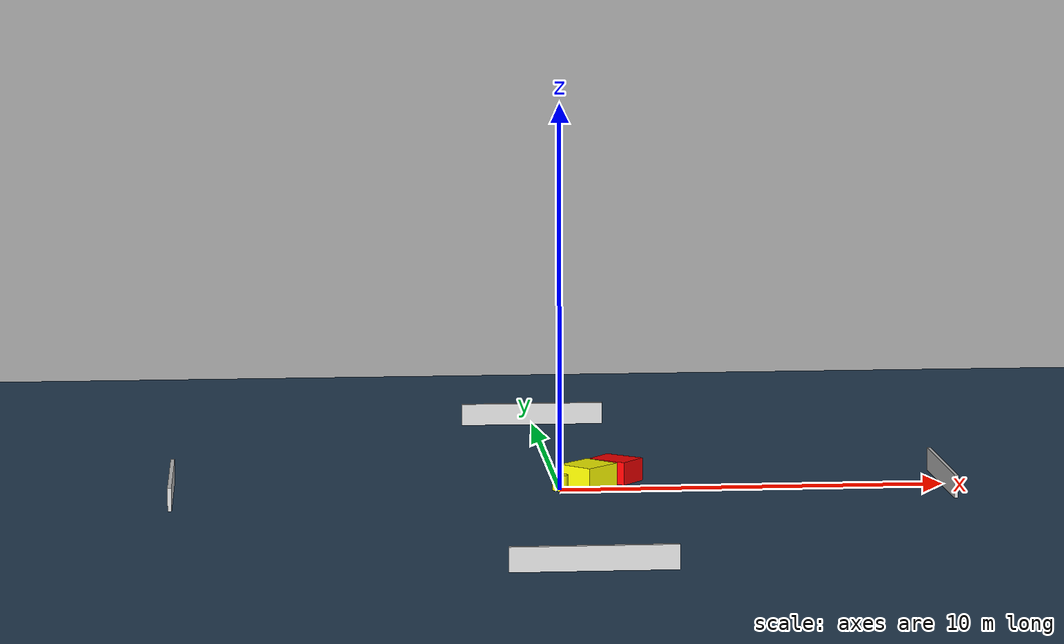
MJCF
<?xml version="1.0" ?>
<mujoco model="generated_environment">
  <option timestep="0.01" integrator="RK4" cone="elliptic"/>
  <default>
    <geom density="1"/>
  </default>
  <asset>
    <texture builtin="gradient" height="3072" name="skybox" rgb1="0.3 0.5 0.7" rgb2="0 0 0" type="skybox" width="512"/>
    <texture builtin="checker" height="300" name="groundplane" rgb1="0.2 0.3 0.4" rgb2="0.1 0.2 0.3" type="2d" width="300"/>
    <material name="groundplane" reflectance="0.2" texrepeat="5 5" texture="groundplane"/>
  </asset>
  <worldbody>
    <light dir="0 0 -1" directional="true" pos="0 0 1.5"/>
    <geom condim="3" friction="0.5 0.005 0.001" material="groundplane" name="floor" pos="0 0 0" size="0 0 0.05" type="plane"/>
    <body name="walls">
      <geom name="wall_1" condim="4" pos="-10.0 0.0 0.3" rgba="0.800000011920929 0.800000011920929 0.800000011920929 1.0" size="0.05 2.0 0.3" type="box"/>
      <geom name="wall_2" condim="4" pos="10.0 0.0 0.3" rgba="0.800000011920929 0.800000011920929 0.800000011920929 1.0" size="0.05 2.0 0.3" type="box"/>
      <geom name="wall_3" condim="4" pos="0.0 -10.0 0.3" rgba="0.800000011920929 0.800000011920929 0.800000011920929 1.0" size="2.0 0.05 0.3" type="box"/>
      <geom name="wall_4" condim="4" pos="0.0 10.0 0.3" rgba="0.800000011920929 0.800000011920929 0.800000011920929 1.0" size="2.0 0.05 0.3" type="box"/>
    </body>
    <body name="robot">
      <joint name="joint_x" type="slide" pos="0 0 0" axis="1 0 0"/>
      <joint name="joint_y" type="slide" pos="0 0 0" axis="0 1 0"/>
      <geom name="robot" type="cylinder" pos="0.0 0.0 0.2" size="0.2 0.2 0.0" mass="5.0" friction="1.0 0.005 0.0001" condim="4" rgba="1.0 1.0 0.0 1.0"/>
    </body>
    <body name="obstacle_1_movable">
      <geom name="obstacle_1_movable" condim="4" pos="0.7691448424293007 0.4348308018163337 0.3" euler="0 0 314.5675623578032" friction="0.0 0.005 0.001" rgba="1.0 1.0 0.0 1.0" size="0.5068185234734999 0.5514385079834957 0.3" type="box" mass="0.1"/>
      <joint type="free"/>
    </body>
    <body name="obstacle_2_static">
      <geom name="obstacle_2_static" condim="4" pos="1.551813282816288 1.1594086588485852 0.3" euler="0 0 231.3657366138915" friction="0.0 0.005 0.001" rgba="1.0 0.0 0.0 1.0" size="0.43558684194365394 0.549443255360094 0.3" type="box"/>
    </body>
  </worldbody>
  <actuator>
    <motor name="actuator_x" joint="joint_x" gear="1" ctrlrange="-1 1"/>
    <motor name="actuator_y" joint="joint_y" gear="1" ctrlrange="-1 1"/>
  </actuator>
</mujoco>
